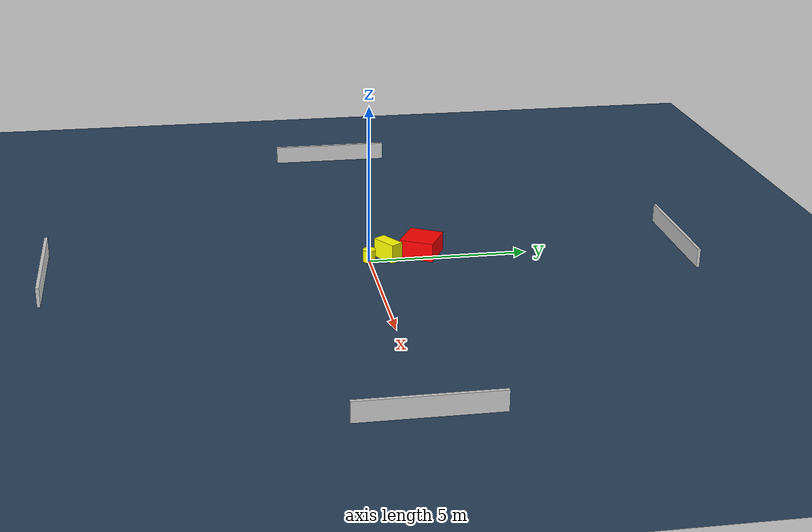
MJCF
<?xml version="1.0" ?>
<mujoco model="generated_environment">
  <option timestep="0.01" integrator="RK4" cone="elliptic"/>
  <default>
    <geom density="1"/>
  </default>
  <asset>
    <texture builtin="gradient" height="3072" name="skybox" rgb1="0.3 0.5 0.7" rgb2="0 0 0" type="skybox" width="512"/>
    <texture builtin="checker" height="300" name="groundplane" rgb1="0.2 0.3 0.4" rgb2="0.1 0.2 0.3" type="2d" width="300"/>
    <material name="groundplane" reflectance="0.2" texrepeat="5 5" texture="groundplane"/>
  </asset>
  <worldbody>
    <light dir="0 0 -1" directional="true" pos="0 0 1.5"/>
    <geom condim="3" friction="0.5 0.005 0.001" material="groundplane" name="floor" pos="0 0 0" size="0 0 0.05" type="plane"/>
    <body name="walls">
      <geom name="wall_1" condim="4" pos="-10.0 0.0 0.3" rgba="0.800000011920929 0.800000011920929 0.800000011920929 1.0" size="0.05 2.0 0.3" type="box"/>
      <geom name="wall_2" condim="4" pos="10.0 0.0 0.3" rgba="0.800000011920929 0.800000011920929 0.800000011920929 1.0" size="0.05 2.0 0.3" type="box"/>
      <geom name="wall_3" condim="4" pos="0.0 -10.0 0.3" rgba="0.800000011920929 0.800000011920929 0.800000011920929 1.0" size="2.0 0.05 0.3" type="box"/>
      <geom name="wall_4" condim="4" pos="0.0 10.0 0.3" rgba="0.800000011920929 0.800000011920929 0.800000011920929 1.0" size="2.0 0.05 0.3" type="box"/>
    </body>
    <body name="robot">
      <joint name="joint_x" type="slide" pos="0 0 0" axis="1 0 0"/>
      <joint name="joint_y" type="slide" pos="0 0 0" axis="0 1 0"/>
      <geom name="robot" type="cylinder" pos="0.0 0.0 0.2" size="0.2 0.2 0.0" mass="5.0" friction="1.0 0.005 0.0001" condim="4" rgba="1.0 1.0 0.0 1.0"/>
    </body>
    <body name="obstacle_1_movable">
      <geom name="obstacle_1_movable" condim="4" pos="-0.14701292095727397 0.6230007824928679 0.3" euler="0 0 32.96327518914575" friction="0.0 0.005 0.001" rgba="1.0 1.0 0.0 1.0" size="0.4286698378954917 0.20747434268124987 0.3" type="box" mass="0.1"/>
      <joint type="free"/>
    </body>
    <body name="obstacle_2_static">
      <geom name="obstacle_2_static" condim="4" pos="-0.35295235513874645 1.7238076129994278 0.3" euler="0 0 241.7204089614448" friction="0.0 0.005 0.001" rgba="1.0 0.0 0.0 1.0" size="0.5424499848579667 0.5631483445197334 0.3" type="box"/>
    </body>
  </worldbody>
  <actuator>
    <motor name="actuator_x" joint="joint_x" gear="1" ctrlrange="-1 1"/>
    <motor name="actuator_y" joint="joint_y" gear="1" ctrlrange="-1 1"/>
  </actuator>
</mujoco>
